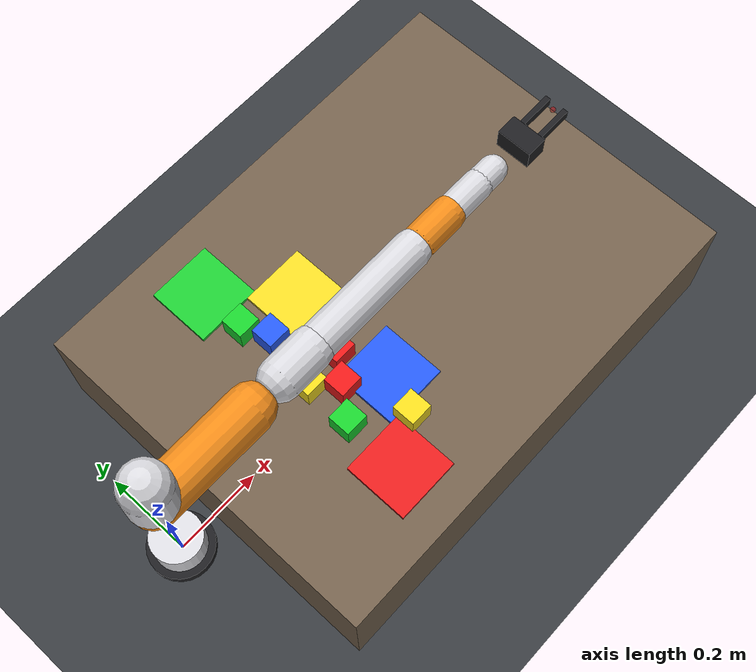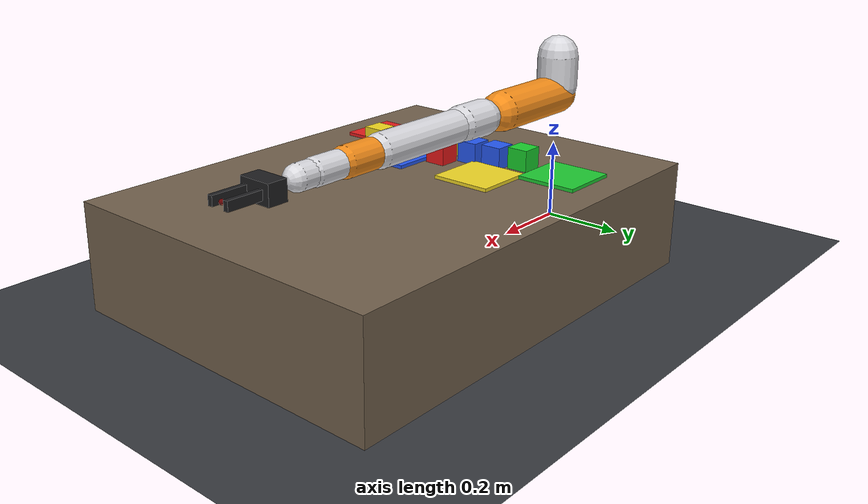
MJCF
marker is replaced by scene/compile_scene.py with N cube bodies.
  Final scenes are compiled to binary .mjb (no XML parsing at app startup).
-->
<mujoco model="panda_cube_sorter">
  <compiler angle="radian" autolimits="true" boundmass="0.01" boundinertia="1e-5"/>

  <option timestep="0.002" integrator="implicitfast" cone="pyramidal"
          solver="Newton" iterations="30" tolerance="1e-8"
          impratio="5" gravity="0 0 -9.81"/>

  <default>
    <joint damping="0.2" armature="0.05" frictionloss="0.15"/>
    <geom solref="0.008 1" solimp="0.95 0.99 0.001" friction="0.6 0.02 0.001" margin="0.0005"/>
    <default class="arm">
      <geom type="capsule" density="900" condim="3"
            contype="1" conaffinity="2"/>
      <joint damping="0.25" armature="0.05" frictionloss="0.2"/>
    </default>
    <default class="finger">
      <geom type="box" density="4000" friction="2.5 0.02 0.001" solref="0.010 1" solimp="0.95 0.99 0.001"
            contype="4" conaffinity="8"/>
      <joint type="slide" damping="60" armature="0.002" frictionloss="0.4"/>
    </default>
    <default class="cube">
      <geom type="box" size="0.025 0.025 0.025" mass="0.08" contype="1" conaffinity="7"
            friction="0.75 0.02 0.002" solref="0.006 1" solimp="0.96 0.995 0.0005"/>
    </default>
    <default class="zone">
      <geom type="box" contype="0" conaffinity="0" density="0"/>
    </default>
  </default>

  <visual>
    <headlight ambient="0.35 0.35 0.35" diffuse="0.55 0.55 0.55" specular="0.15 0.15 0.15"/>
  </visual>

  <asset>
    <texture type="skybox" builtin="flat" rgb1="0.10 0.11 0.13" rgb2="0.10 0.11 0.13" width="32" height="32"/>
    <material name="mat_floor" rgba="0.22 0.23 0.25 1" specular="0.1" shininess="0.2"/>
    <material name="mat_table" rgba="0.45 0.38 0.30 1" specular="0.15" shininess="0.3"/>
    <material name="mat_arm"   rgba="0.85 0.85 0.87 1" specular="0.4" shininess="0.6"/>
    <material name="mat_link2" rgba="0.95 0.55 0.10 1" specular="0.4" shininess="0.6"/>
    <material name="mat_hand"  rgba="0.12 0.12 0.13 1" specular="0.3" shininess="0.5"/>
  </asset>

  <worldbody>
    <light name="top"    pos="0.55 0.0 1.60" dir="0 0 -1" diffuse="0.75 0.75 0.75" specular="0.2 0.2 0.2" castshadow="false"/>
    <light name="fill"   pos="0.2 -0.8 1.20" dir="0.35 0.6 -1" diffuse="0.30 0.30 0.32" castshadow="false"/>
    <geom name="floor" type="plane" size="4 4 0.05" material="mat_floor"/>

    <!-- ============ Panda-class arm (base at origin, front = +x) ============ -->
    <body name="link0" pos="0 0 0">
      <geom name="l0_base" class="arm"  type="cylinder" size="0.055 0.045" pos="0 0 0.045" material="mat_arm"/>
      <geom name="l0_disc" class="arm"  type="cylinder" size="0.070 0.012" pos="0 0 0.012" material="mat_hand"/>
      <body name="link1" pos="0 0 0.333">
        <joint name="joint1" type="hinge" axis="0 0 1" range="-2.8973 2.8973"/>
        <geom name="l1" class="arm" type="capsule" fromto="0 0 0.02 0 0 0.10" size="0.052" material="mat_arm"/>
        <body name="link2" pos="0 0 0">
          <joint name="joint2" type="hinge" axis="0 1 0" range="-1.7628 1.7628"/>
          <geom name="l2" class="arm" type="capsule" fromto="0 0 0 0.24 0 0" size="0.050" material="mat_link2"/>
          <body name="link3" pos="0.316 0 0">
            <joint name="joint3" type="hinge" axis="1 0 0" range="-2.8973 2.8973"/>
            <geom name="l3" class="arm" type="capsule" fromto="0 0 0 0.0825 0 0" size="0.045" material="mat_arm"/>
            <body name="link4" pos="0.0825 0 0">
              <joint name="joint4" type="hinge" axis="0 1 0" range="-3.0718 3.0718"/><!-- simplified: elbow-up branch -->
              <geom name="l4" class="arm" type="capsule" fromto="0 0 0 0.28 0 0" size="0.040" material="mat_arm"/>
              <body name="link5" pos="0.302 0 0">
                <joint name="joint5" type="hinge" axis="1 0 0" range="-2.8973 2.8973"/>
                <geom name="l5" class="arm" type="capsule" fromto="0 0 0 0.0825 0 0" size="0.036" material="mat_link2"/>
                <body name="link6" pos="0.0825 0 0">
                  <joint name="joint6" type="hinge" axis="0 1 0" range="-0.0175 3.7525"/>
                  <geom name="l6" class="arm" type="capsule" fromto="0 0 0 0.088 0 0" size="0.032" material="mat_arm"/>
                  <body name="link7" pos="0.088 0 0">
                    <joint name="joint7" type="hinge" axis="1 0 0" range="-2.8973 2.8973"/>
                    <geom name="l7" class="arm" type="capsule" fromto="0 0 0 0.045 0 0" size="0.030" material="mat_arm"/>
                    <!-- flange + parallel gripper (approach = local +x) -->
                    <body name="hand" pos="0.107 0 0">
                      <geom name="hand_palm" type="box" size="0.024 0.040 0.024" pos="0.024 0 0" material="mat_hand" contype="1" conaffinity="2"/>
                      <site name="tcp" pos="0.126 0 0" size="0.006" rgba="1 0 0 0.4"/>
                      <camera name="cam_grip" pos="0.02 0 0.06" xyaxes="0 0 -1 0 1 0" fovy="90"/>
                      <body name="finger_l" pos="0.052 0.0225 0">
                        <joint name="finger_l_j" type="slide" axis="0 1 0" range="0 0.025"/>
                        <geom name="finger_l_g" size="0.042 0.006 0.011" pos="0.042 0 0" class="finger" material="mat_hand"/>
                      </body>
                      <body name="finger_r" pos="0.052 -0.0225 0">
                        <joint name="finger_r_j" type="slide" axis="0 1 0" range="0 0.025"/>
                        <geom name="finger_r_g" size="0.042 0.006 0.011" pos="0.042 0 0" class="finger" material="mat_hand"/>
                      </body>
                    </body>
                  </body>
                </body>
              </body>
            </body>
          </body>
        </body>
      </body>
    </body>

    <!-- ============ Table + sorting zones ============ -->
    <body name="table" pos="0.62 0 0.125">
      <geom name="table_g" type="box" size="0.53 0.40 0.125" material="mat_table" contype="1" conaffinity="5"/>
      <body name="zone_red"    pos="-0.26 -0.26 0.129">
        <geom name="zone_red_g"    size="0.070 0.070 0.004" rgba="0.90 0.12 0.12 1" class="zone"/>
      </body>
      <body name="zone_green"  pos="-0.26  0.26 0.129">
        <geom name="zone_green_g"  size="0.070 0.070 0.004" rgba="0.12 0.80 0.20 1" class="zone"/>
      </body>
      <body name="zone_blue"   pos="-0.14 -0.12 0.129">
        <geom name="zone_blue_g"   size="0.070 0.070 0.004" rgba="0.15 0.35 0.95 1" class="zone"/>
      </body>
      <body name="zone_yellow" pos="-0.14  0.12 0.129">
        <geom name="zone_yellow_g" size="0.070 0.070 0.004" rgba="0.95 0.85 0.15 1" class="zone"/>
      </body>
    </body>

    <!-- ============ Cubes (injected by compile_scene.py) ============ -->
    <body name="cube_red_0" pos="0.4435 -0.0192 0.2750">
      <freejoint name="free_red_0"/>
      <geom name="geom_red_0" class="cube" rgba="0.92 0.1 0.1 1.0"/>
      <site name="site_red_0" pos="0 0 0" size="0.004" rgba="0.92 0.1 0.1 0.6" type="sphere"/>
    </body>
    <body name="cube_green_1" pos="0.3545 -0.1329 0.2750">
      <freejoint name="free_green_1"/>
      <geom name="geom_green_1" class="cube" rgba="0.1 0.82 0.18 1.0"/>
      <site name="site_green_1" pos="0 0 0" size="0.004" rgba="0.1 0.82 0.18 0.6" type="sphere"/>
    </body>
    <body name="cube_blue_2" pos="0.3908 0.0321 0.2750">
      <freejoint name="free_blue_2"/>
      <geom name="geom_blue_2" class="cube" rgba="0.15 0.35 0.95 1.0"/>
      <site name="site_blue_2" pos="0 0 0" size="0.004" rgba="0.15 0.35 0.95 0.6" type="sphere"/>
    </body>
    <body name="cube_yellow_3" pos="0.4494 -0.2073 0.2750">
      <freejoint name="free_yellow_3"/>
      <geom name="geom_yellow_3" class="cube" rgba="0.95 0.85 0.12 1.0"/>
      <site name="site_yellow_3" pos="0 0 0" size="0.004" rgba="0.95 0.85 0.12 0.6" type="sphere"/>
    </body>
    <body name="cube_red_4" pos="0.4025 -0.0742 0.2750">
      <freejoint name="free_red_4"/>
      <geom name="geom_red_4" class="cube" rgba="0.92 0.1 0.1 1.0"/>
      <site name="site_red_4" pos="0 0 0" size="0.004" rgba="0.92 0.1 0.1 0.6" type="sphere"/>
    </body>
    <body name="cube_green_5" pos="0.3580 0.1508 0.2750">
      <freejoint name="free_green_5"/>
      <geom name="geom_green_5" class="cube" rgba="0.1 0.82 0.18 1.0"/>
      <site name="site_green_5" pos="0 0 0" size="0.004" rgba="0.1 0.82 0.18 0.6" type="sphere"/>
    </body>
    <body name="cube_blue_6" pos="0.3822 0.0943 0.2750">
      <freejoint name="free_blue_6"/>
      <geom name="geom_blue_6" class="cube" rgba="0.15 0.35 0.95 1.0"/>
      <site name="site_blue_6" pos="0 0 0" size="0.004" rgba="0.15 0.35 0.95 0.6" type="sphere"/>
    </body>
    <body name="cube_yellow_7" pos="0.3594 -0.0255 0.2750">
      <freejoint name="free_yellow_7"/>
      <geom name="geom_yellow_7" class="cube" rgba="0.95 0.85 0.12 1.0"/>
      <site name="site_yellow_7" pos="0 0 0" size="0.004" rgba="0.95 0.85 0.12 0.6" type="sphere"/>
    </body>

    <!-- ============ Cameras ============ -->
    <camera name="cam_event" pos="0.42 0 1.05" xyaxes="1 0 0 0 1 0" fovy="78"/>
    <camera name="cam_track" mode="targetbody" target="table" pos="1.45 -1.25 0.95" fovy="55"/>
  </worldbody>

  <tendon>
    <fixed name="grip_tendon">
      <joint joint="finger_l_j" coef="1"/>
      <joint joint="finger_r_j" coef="1"/>
    </fixed>
  </tendon>

  <actuator>
    <motor name="m1" joint="joint1" gear="1" ctrlrange="-87 87"/>
    <motor name="m2" joint="joint2" gear="1" ctrlrange="-87 87"/>
    <motor name="m3" joint="joint3" gear="1" ctrlrange="-87 87"/>
    <motor name="m4" joint="joint4" gear="1" ctrlrange="-87 87"/>
    <motor name="m5" joint="joint5" gear="1" ctrlrange="-12 12"/>
    <motor name="m6" joint="joint6" gear="1" ctrlrange="-12 12"/>
    <motor name="m7" joint="joint7" gear="1" ctrlrange="-12 12"/>
    <position name="grip_act" tendon="grip_tendon" kp="120" ctrlrange="0 0.05"/>
  </actuator>
</mujoco>
